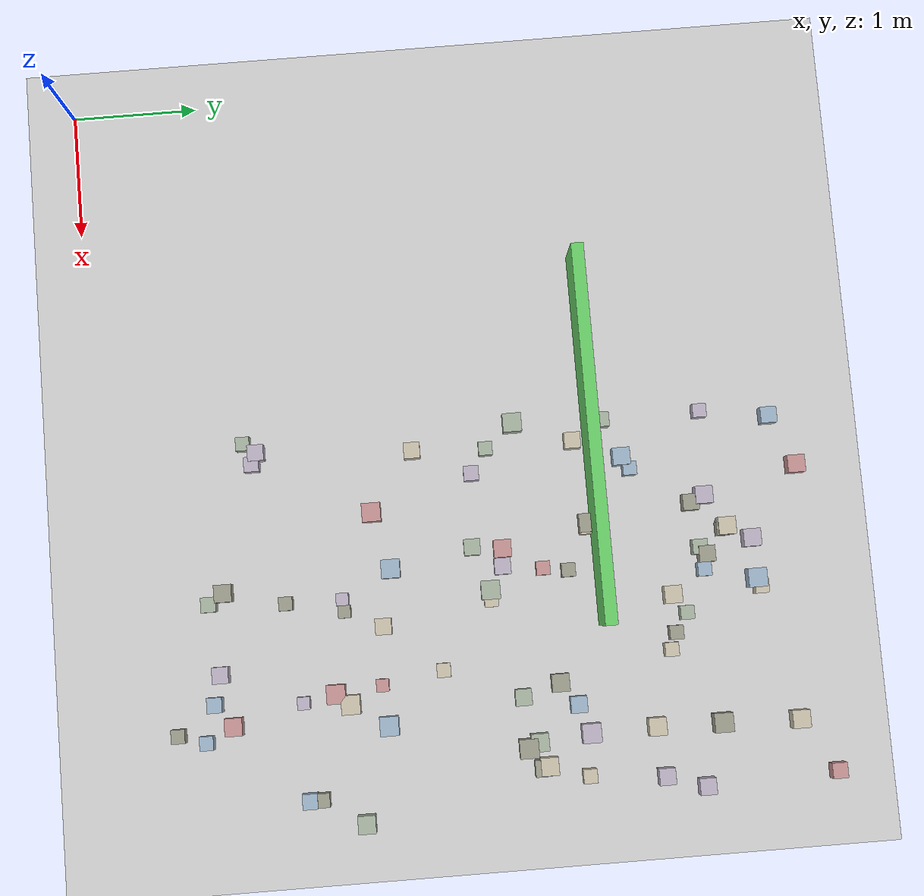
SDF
<sdf version="1.6">
 <world name="small_maze_world">
  <include><uri>model://ground_plane</uri></include>
  <include><uri>model://sun</uri></include>
  <model name="maze_wall_3">
   <static>true</static>
   <pose>3 4 0.25 0 0 0</pose>
   <link name="link">
    <collision name="collision"><geometry><box><size>3 0.1 0.5</size></box></geometry></collision>
    <visual name="visual">
     <geometry><box><size>3 0.1 0.5</size></box></geometry>
     <material><ambient>0.4 0.8 0.4 1</ambient></material>
    </visual>
   </link>
  </model>
  <model name="box_1">
   <static>false</static>
   <pose>3.92 2.33 0.05 0 0 0</pose>
   <link name="link">
    <inertial>
     <mass>0.2</mass>
     <inertia><ixx>0.001</ixx><iyy>0.001</iyy><izz>0.001</izz><ixy>0</ixy><ixz>0</ixz><iyz>0</iyz></inertia>
    </inertial>
    <collision name="collision"><geometry><box><size>0.15 0.15 0.15</size></box></geometry></collision>
    <visual name="visual">
     <geometry><box><size>0.15 0.15 0.15</size></box></geometry>
     <material><ambient>0.6 0.69 0.77 1</ambient><diffuse>0.6 0.69 0.77 1</diffuse></material>
    </visual>
   </link>
  </model>
  <model name="box_8">
   <static>false</static>
   <pose>4.01 0.99 0.05 0 0 0</pose>
   <link name="link">
    <inertial>
     <mass>0.2</mass>
     <inertia><ixx>0.001</ixx><iyy>0.001</iyy><izz>0.001</izz><ixy>0</ixy><ixz>0</ixz><iyz>0</iyz></inertia>
    </inertial>
    <collision name="collision"><geometry><box><size>0.14 0.14 0.14</size></box></geometry></collision>
    <visual name="visual">
     <geometry><box><size>0.14 0.14 0.14</size></box></geometry>
     <material><ambient>0.6 0.6 0.54 1</ambient><diffuse>0.6 0.6 0.54 1</diffuse></material>
    </visual>
   </link>
  </model>
  <model name="box_11">
   <static>false</static>
   <pose>5.56 3.46 0.05 0 0 0</pose>
   <link name="link">
    <inertial>
     <mass>0.2</mass>
     <inertia><ixx>0.001</ixx><iyy>0.001</iyy><izz>0.001</izz><ixy>0</ixy><ixz>0</ixz><iyz>0</iyz></inertia>
    </inertial>
    <collision name="collision"><geometry><box><size>0.14 0.14 0.14</size></box></geometry></collision>
    <visual name="visual">
     <geometry><box><size>0.14 0.14 0.14</size></box></geometry>
     <material><ambient>0.78 0.74 0.66 1</ambient><diffuse>0.78 0.74 0.66 1</diffuse></material>
    </visual>
   </link>
  </model>
  <model name="box_18">
   <static>false</static>
   <pose>3.17 4.24 0.05 0 0 0</pose>
   <link name="link">
    <inertial>
     <mass>0.2</mass>
     <inertia><ixx>0.001</ixx><iyy>0.001</iyy><izz>0.001</izz><ixy>0</ixy><ixz>0</ixz><iyz>0</iyz></inertia>
    </inertial>
    <collision name="collision"><geometry><box><size>0.14 0.14 0.14</size></box></geometry></collision>
    <visual name="visual">
     <geometry><box><size>0.14 0.14 0.14</size></box></geometry>
     <material><ambient>0.6 0.69 0.77 1</ambient><diffuse>0.6 0.69 0.77 1</diffuse></material>
    </visual>
   </link>
  </model>
  <model name="box_21">
   <static>false</static>
   <pose>3.46 2.21 0.05 0 0 0</pose>
   <link name="link">
    <inertial>
     <mass>0.2</mass>
     <inertia><ixx>0.001</ixx><iyy>0.001</iyy><izz>0.001</izz><ixy>0</ixy><ixz>0</ixz><iyz>0</iyz></inertia>
    </inertial>
    <collision name="collision"><geometry><box><size>0.15 0.15 0.15</size></box></geometry></collision>
    <visual name="visual">
     <geometry><box><size>0.15 0.15 0.15</size></box></geometry>
     <material><ambient>0.76 0.56 0.56 1</ambient><diffuse>0.76 0.56 0.56 1</diffuse></material>
    </visual>
   </link>
  </model>
  <model name="box_23">
   <static>false</static>
   <pose>4.73 4.5 0.05 0 0 0</pose>
   <link name="link">
    <inertial>
     <mass>0.2</mass>
     <inertia><ixx>0.001</ixx><iyy>0.001</iyy><izz>0.001</izz><ixy>0</ixy><ixz>0</ixz><iyz>0</iyz></inertia>
    </inertial>
    <collision name="collision"><geometry><box><size>0.11 0.11 0.11</size></box></geometry></collision>
    <visual name="visual">
     <geometry><box><size>0.11 0.11 0.11</size></box></geometry>
     <material><ambient>0.78 0.74 0.66 1</ambient><diffuse>0.78 0.74 0.66 1</diffuse></material>
    </visual>
   </link>
  </model>
  <model name="box_36">
   <static>false</static>
   <pose>3.02 3.16 0.05 0 0 0</pose>
   <link name="link">
    <inertial>
     <mass>0.2</mass>
     <inertia><ixx>0.001</ixx><iyy>0.001</iyy><izz>0.001</izz><ixy>0</ixy><ixz>0</ixz><iyz>0</iyz></inertia>
    </inertial>
    <collision name="collision"><geometry><box><size>0.11 0.11 0.11</size></box></geometry></collision>
    <visual name="visual">
     <geometry><box><size>0.11 0.11 0.11</size></box></geometry>
     <material><ambient>0.64 0.69 0.62 1</ambient><diffuse>0.64 0.69 0.62 1</diffuse></material>
    </visual>
   </link>
  </model>
  <model name="box_38">
   <static>false</static>
   <pose>3.58 4.76 0.05 0 0 0</pose>
   <link name="link">
    <inertial>
     <mass>0.2</mass>
     <inertia><ixx>0.001</ixx><iyy>0.001</iyy><izz>0.001</izz><ixy>0</ixy><ixz>0</ixz><iyz>0</iyz></inertia>
    </inertial>
    <collision name="collision"><geometry><box><size>0.13 0.13 0.13</size></box></geometry></collision>
    <visual name="visual">
     <geometry><box><size>0.13 0.13 0.13</size></box></geometry>
     <material><ambient>0.6 0.6 0.54 1</ambient><diffuse>0.6 0.6 0.54 1</diffuse></material>
    </visual>
   </link>
  </model>
  <model name="box_47">
   <static>false</static>
   <pose>2.85 4.9 0.05 0 0 0</pose>
   <link name="link">
    <inertial>
     <mass>0.2</mass>
     <inertia><ixx>0.001</ixx><iyy>0.001</iyy><izz>0.001</izz><ixy>0</ixy><ixz>0</ixz><iyz>0</iyz></inertia>
    </inertial>
    <collision name="collision"><geometry><box><size>0.11 0.11 0.11</size></box></geometry></collision>
    <visual name="visual">
     <geometry><box><size>0.11 0.11 0.11</size></box></geometry>
     <material><ambient>0.72 0.68 0.75 1</ambient><diffuse>0.72 0.68 0.75 1</diffuse></material>
    </visual>
   </link>
  </model>
  <model name="box_48">
   <static>false</static>
   <pose>2.93 5.45 0.05 0 0 0</pose>
   <link name="link">
    <inertial>
     <mass>0.2</mass>
     <inertia><ixx>0.001</ixx><iyy>0.001</iyy><izz>0.001</izz><ixy>0</ixy><ixz>0</ixz><iyz>0</iyz></inertia>
    </inertial>
    <collision name="collision"><geometry><box><size>0.13 0.13 0.13</size></box></geometry></collision>
    <visual name="visual">
     <geometry><box><size>0.13 0.13 0.13</size></box></geometry>
     <material><ambient>0.6 0.69 0.77 1</ambient><diffuse>0.6 0.69 0.77 1</diffuse></material>
    </visual>
   </link>
  </model>
  <model name="box_59">
   <static>false</static>
   <pose>4.23 3.11 0.05 0 0 0</pose>
   <link name="link">
    <inertial>
     <mass>0.2</mass>
     <inertia><ixx>0.001</ixx><iyy>0.001</iyy><izz>0.001</izz><ixy>0</ixy><ixz>0</ixz><iyz>0</iyz></inertia>
    </inertial>
    <collision name="collision"><geometry><box><size>0.11 0.11 0.11</size></box></geometry></collision>
    <visual name="visual">
     <geometry><box><size>0.11 0.11 0.11</size></box></geometry>
     <material><ambient>0.78 0.74 0.66 1</ambient><diffuse>0.78 0.74 0.66 1</diffuse></material>
    </visual>
   </link>
  </model>
  <model name="box_65">
   <static>false</static>
   <pose>4.87 1.83 0.05 0 0 0</pose>
   <link name="link">
    <inertial>
     <mass>0.2</mass>
     <inertia><ixx>0.001</ixx><iyy>0.001</iyy><izz>0.001</izz><ixy>0</ixy><ixz>0</ixz><iyz>0</iyz></inertia>
    </inertial>
    <collision name="collision"><geometry><box><size>0.15 0.15 0.15</size></box></geometry></collision>
    <visual name="visual">
     <geometry><box><size>0.15 0.15 0.15</size></box></geometry>
     <material><ambient>0.76 0.56 0.56 1</ambient><diffuse>0.76 0.56 0.56 1</diffuse></material>
    </visual>
   </link>
  </model>
  <model name="box_69">
   <static>false</static>
   <pose>5.35 5.46 0.05 0 0 0</pose>
   <link name="link">
    <inertial>
     <mass>0.2</mass>
     <inertia><ixx>0.001</ixx><iyy>0.001</iyy><izz>0.001</izz><ixy>0</ixy><ixz>0</ixz><iyz>0</iyz></inertia>
    </inertial>
    <collision name="collision"><geometry><box><size>0.14 0.14 0.14</size></box></geometry></collision>
    <visual name="visual">
     <geometry><box><size>0.14 0.14 0.14</size></box></geometry>
     <material><ambient>0.78 0.74 0.66 1</ambient><diffuse>0.78 0.74 0.66 1</diffuse></material>
    </visual>
   </link>
  </model>
  <model name="box_73">
   <static>false</static>
   <pose>4.23 1.94 0.05 0 0 0</pose>
   <link name="link">
    <inertial>
     <mass>0.2</mass>
     <inertia><ixx>0.001</ixx><iyy>0.001</iyy><izz>0.001</izz><ixy>0</ixy><ixz>0</ixz><iyz>0</iyz></inertia>
    </inertial>
    <collision name="collision"><geometry><box><size>0.1 0.1 0.1</size></box></geometry></collision>
    <visual name="visual">
     <geometry><box><size>0.1 0.1 0.1</size></box></geometry>
     <material><ambient>0.6 0.6 0.54 1</ambient><diffuse>0.6 0.6 0.54 1</diffuse></material>
    </visual>
   </link>
  </model>
  <model name="box_75">
   <static>false</static>
   <pose>5.1 0.57 0.05 0 0 0</pose>
   <link name="link">
    <inertial>
     <mass>0.2</mass>
     <inertia><ixx>0.001</ixx><iyy>0.001</iyy><izz>0.001</izz><ixy>0</ixy><ixz>0</ixz><iyz>0</iyz></inertia>
    </inertial>
    <collision name="collision"><geometry><box><size>0.11 0.11 0.11</size></box></geometry></collision>
    <visual name="visual">
     <geometry><box><size>0.11 0.11 0.11</size></box></geometry>
     <material><ambient>0.6 0.6 0.54 1</ambient><diffuse>0.6 0.6 0.54 1</diffuse></material>
    </visual>
   </link>
  </model>
  <model name="box_94">
   <static>false</static>
   <pose>4.09 0.87 0.05 0 0 0</pose>
   <link name="link">
    <inertial>
     <mass>0.2</mass>
     <inertia><ixx>0.001</ixx><iyy>0.001</iyy><izz>0.001</izz><ixy>0</ixy><ixz>0</ixz><iyz>0</iyz></inertia>
    </inertial>
    <collision name="collision"><geometry><box><size>0.12 0.12 0.12</size></box></geometry></collision>
    <visual name="visual">
     <geometry><box><size>0.12 0.12 0.12</size></box></geometry>
     <material><ambient>0.64 0.69 0.62 1</ambient><diffuse>0.64 0.69 0.62 1</diffuse></material>
    </visual>
   </link>
  </model>
  <model name="box_113">
   <static>false</static>
   <pose>3.79 5.0 0.05 0 0 0</pose>
   <link name="link">
    <inertial>
     <mass>0.2</mass>
     <inertia><ixx>0.001</ixx><iyy>0.001</iyy><izz>0.001</izz><ixy>0</ixy><ixz>0</ixz><iyz>0</iyz></inertia>
    </inertial>
    <collision name="collision"><geometry><box><size>0.1 0.1 0.1</size></box></geometry></collision>
    <visual name="visual">
     <geometry><box><size>0.1 0.1 0.1</size></box></geometry>
     <material><ambient>0.6 0.69 0.77 1</ambient><diffuse>0.6 0.69 0.77 1</diffuse></material>
    </visual>
   </link>
  </model>
  <model name="box_120">
   <static>false</static>
   <pose>2.99 2.57 0.05 0 0 0</pose>
   <link name="link">
    <inertial>
     <mass>0.2</mass>
     <inertia><ixx>0.001</ixx><iyy>0.001</iyy><izz>0.001</izz><ixy>0</ixy><ixz>0</ixz><iyz>0</iyz></inertia>
    </inertial>
    <collision name="collision"><geometry><box><size>0.13 0.13 0.13</size></box></geometry></collision>
    <visual name="visual">
     <geometry><box><size>0.13 0.13 0.13</size></box></geometry>
     <material><ambient>0.78 0.74 0.66 1</ambient><diffuse>0.78 0.74 0.66 1</diffuse></material>
    </visual>
   </link>
  </model>
  <model name="box_121">
   <static>false</static>
   <pose>5.17 0.79 0.05 0 0 0</pose>
   <link name="link">
    <inertial>
     <mass>0.2</mass>
     <inertia><ixx>0.001</ixx><iyy>0.001</iyy><izz>0.001</izz><ixy>0</ixy><ixz>0</ixz><iyz>0</iyz></inertia>
    </inertial>
    <collision name="collision"><geometry><box><size>0.11 0.11 0.11</size></box></geometry></collision>
    <visual name="visual">
     <geometry><box><size>0.11 0.11 0.11</size></box></geometry>
     <material><ambient>0.6 0.69 0.77 1</ambient><diffuse>0.6 0.69 0.77 1</diffuse></material>
    </visual>
   </link>
  </model>
  <model name="box_122">
   <static>false</static>
   <pose>3.9 5.22 0.05 0 0 0</pose>
   <link name="link">
    <inertial>
     <mass>0.2</mass>
     <inertia><ixx>0.001</ixx><iyy>0.001</iyy><izz>0.001</izz><ixy>0</ixy><ixz>0</ixz><iyz>0</iyz></inertia>
    </inertial>
    <collision name="collision"><geometry><box><size>0.14 0.14 0.14</size></box></geometry></collision>
    <visual name="visual">
     <geometry><box><size>0.14 0.14 0.14</size></box></geometry>
     <material><ambient>0.72 0.68 0.75 1</ambient><diffuse>0.72 0.68 0.75 1</diffuse></material>
    </visual>
   </link>
  </model>
  <model name="box_125">
   <static>false</static>
   <pose>2.83 1.22 0.05 0 0 0</pose>
   <link name="link">
    <inertial>
     <mass>0.2</mass>
     <inertia><ixx>0.001</ixx><iyy>0.001</iyy><izz>0.001</izz><ixy>0</ixy><ixz>0</ixz><iyz>0</iyz></inertia>
    </inertial>
    <collision name="collision"><geometry><box><size>0.11 0.11 0.11</size></box></geometry></collision>
    <visual name="visual">
     <geometry><box><size>0.11 0.11 0.11</size></box></geometry>
     <material><ambient>0.64 0.69 0.62 1</ambient><diffuse>0.64 0.69 0.62 1</diffuse></material>
    </visual>
   </link>
  </model>
  <model name="box_134">
   <static>false</static>
   <pose>4.37 2.24 0.05 0 0 0</pose>
   <link name="link">
    <inertial>
     <mass>0.2</mass>
     <inertia><ixx>0.001</ixx><iyy>0.001</iyy><izz>0.001</izz><ixy>0</ixy><ixz>0</ixz><iyz>0</iyz></inertia>
    </inertial>
    <collision name="collision"><geometry><box><size>0.13 0.13 0.13</size></box></geometry></collision>
    <visual name="visual">
     <geometry><box><size>0.13 0.13 0.13</size></box></geometry>
     <material><ambient>0.78 0.74 0.66 1</ambient><diffuse>0.78 0.74 0.66 1</diffuse></material>
    </visual>
   </link>
  </model>
  <model name="box_148">
   <static>false</static>
   <pose>4.45 4.65 0.05 0 0 0</pose>
   <link name="link">
    <inertial>
     <mass>0.2</mass>
     <inertia><ixx>0.001</ixx><iyy>0.001</iyy><izz>0.001</izz><ixy>0</ixy><ixz>0</ixz><iyz>0</iyz></inertia>
    </inertial>
    <collision name="collision"><geometry><box><size>0.11 0.11 0.11</size></box></geometry></collision>
    <visual name="visual">
     <geometry><box><size>0.11 0.11 0.11</size></box></geometry>
     <material><ambient>0.64 0.69 0.62 1</ambient><diffuse>0.64 0.69 0.62 1</diffuse></material>
    </visual>
   </link>
  </model>
  <model name="box_153">
   <static>false</static>
   <pose>3.68 3.93 0.05 0 0 0</pose>
   <link name="link">
    <inertial>
     <mass>0.2</mass>
     <inertia><ixx>0.001</ixx><iyy>0.001</iyy><izz>0.001</izz><ixy>0</ixy><ixz>0</ixz><iyz>0</iyz></inertia>
    </inertial>
    <collision name="collision"><geometry><box><size>0.15 0.15 0.15</size></box></geometry></collision>
    <visual name="visual">
     <geometry><box><size>0.15 0.15 0.15</size></box></geometry>
     <material><ambient>0.6 0.6 0.54 1</ambient><diffuse>0.6 0.6 0.54 1</diffuse></material>
    </visual>
   </link>
  </model>
  <model name="box_156">
   <static>false</static>
   <pose>4.6 4.55 0.05 0 0 0</pose>
   <link name="link">
    <inertial>
     <mass>0.2</mass>
     <inertia><ixx>0.001</ixx><iyy>0.001</iyy><izz>0.001</izz><ixy>0</ixy><ixz>0</ixz><iyz>0</iyz></inertia>
    </inertial>
    <collision name="collision"><geometry><box><size>0.11 0.11 0.11</size></box></geometry></collision>
    <visual name="visual">
     <geometry><box><size>0.11 0.11 0.11</size></box></geometry>
     <material><ambient>0.6 0.6 0.54 1</ambient><diffuse>0.6 0.6 0.54 1</diffuse></material>
    </visual>
   </link>
  </model>
  <model name="box_158">
   <static>false</static>
   <pose>4.01 3.54 0.05 0 0 0</pose>
   <link name="link">
    <inertial>
     <mass>0.2</mass>
     <inertia><ixx>0.001</ixx><iyy>0.001</iyy><izz>0.001</izz><ixy>0</ixy><ixz>0</ixz><iyz>0</iyz></inertia>
    </inertial>
    <collision name="collision"><geometry><box><size>0.11 0.11 0.11</size></box></geometry></collision>
    <visual name="visual">
     <geometry><box><size>0.11 0.11 0.11</size></box></geometry>
     <material><ambient>0.76 0.56 0.56 1</ambient><diffuse>0.76 0.56 0.56 1</diffuse></material>
    </visual>
   </link>
  </model>
  <model name="box_160">
   <static>false</static>
   <pose>5.68 1.67 0.05 0 0 0</pose>
   <link name="link">
    <inertial>
     <mass>0.2</mass>
     <inertia><ixx>0.001</ixx><iyy>0.001</iyy><izz>0.001</izz><ixy>0</ixy><ixz>0</ixz><iyz>0</iyz></inertia>
    </inertial>
    <collision name="collision"><geometry><box><size>0.11 0.11 0.11</size></box></geometry></collision>
    <visual name="visual">
     <geometry><box><size>0.11 0.11 0.11</size></box></geometry>
     <material><ambient>0.6 0.6 0.54 1</ambient><diffuse>0.6 0.6 0.54 1</diffuse></material>
    </visual>
   </link>
  </model>
  <model name="box_163">
   <static>false</static>
   <pose>2.83 3.39 0.05 0 0 0</pose>
   <link name="link">
    <inertial>
     <mass>0.2</mass>
     <inertia><ixx>0.001</ixx><iyy>0.001</iyy><izz>0.001</izz><ixy>0</ixy><ixz>0</ixz><iyz>0</iyz></inertia>
    </inertial>
    <collision name="collision"><geometry><box><size>0.15 0.15 0.15</size></box></geometry></collision>
    <visual name="visual">
     <geometry><box><size>0.15 0.15 0.15</size></box></geometry>
     <material><ambient>0.64 0.69 0.62 1</ambient><diffuse>0.64 0.69 0.62 1</diffuse></material>
    </visual>
   </link>
  </model>
  <model name="box_165">
   <static>false</static>
   <pose>5.33 3.81 0.05 0 0 0</pose>
   <link name="link">
    <inertial>
     <mass>0.2</mass>
     <inertia><ixx>0.001</ixx><iyy>0.001</iyy><izz>0.001</izz><ixy>0</ixy><ixz>0</ixz><iyz>0</iyz></inertia>
    </inertial>
    <collision name="collision"><geometry><box><size>0.15 0.15 0.15</size></box></geometry></collision>
    <visual name="visual">
     <geometry><box><size>0.15 0.15 0.15</size></box></geometry>
     <material><ambient>0.72 0.68 0.75 1</ambient><diffuse>0.72 0.68 0.75 1</diffuse></material>
    </visual>
   </link>
  </model>
  <model name="box_166">
   <static>false</static>
   <pose>4.29 5.26 0.05 0 0 0</pose>
   <link name="link">
    <inertial>
     <mass>0.2</mass>
     <inertia><ixx>0.001</ixx><iyy>0.001</iyy><izz>0.001</izz><ixy>0</ixy><ixz>0</ixz><iyz>0</iyz></inertia>
    </inertial>
    <collision name="collision"><geometry><box><size>0.11 0.11 0.11</size></box></geometry></collision>
    <visual name="visual">
     <geometry><box><size>0.11 0.11 0.11</size></box></geometry>
     <material><ambient>0.78 0.74 0.66 1</ambient><diffuse>0.78 0.74 0.66 1</diffuse></material>
    </visual>
   </link>
  </model>
  <model name="box_173">
   <static>false</static>
   <pose>4.0 4.85 0.05 0 0 0</pose>
   <link name="link">
    <inertial>
     <mass>0.2</mass>
     <inertia><ixx>0.001</ixx><iyy>0.001</iyy><izz>0.001</izz><ixy>0</ixy><ixz>0</ixz><iyz>0</iyz></inertia>
    </inertial>
    <collision name="collision"><geometry><box><size>0.13 0.13 0.13</size></box></geometry></collision>
    <visual name="visual">
     <geometry><box><size>0.13 0.13 0.13</size></box></geometry>
     <material><ambient>0.6 0.6 0.54 1</ambient><diffuse>0.6 0.6 0.54 1</diffuse></material>
    </visual>
   </link>
  </model>
  <model name="box_181">
   <static>false</static>
   <pose>3.83 3.23 0.05 0 0 0</pose>
   <link name="link">
    <inertial>
     <mass>0.2</mass>
     <inertia><ixx>0.001</ixx><iyy>0.001</iyy><izz>0.001</izz><ixy>0</ixy><ixz>0</ixz><iyz>0</iyz></inertia>
    </inertial>
    <collision name="collision"><geometry><box><size>0.14 0.14 0.14</size></box></geometry></collision>
    <visual name="visual">
     <geometry><box><size>0.14 0.14 0.14</size></box></geometry>
     <material><ambient>0.76 0.56 0.56 1</ambient><diffuse>0.76 0.56 0.56 1</diffuse></material>
    </visual>
   </link>
  </model>
  <model name="box_196">
   <static>false</static>
   <pose>3.53 4.87 0.05 0 0 0</pose>
   <link name="link">
    <inertial>
     <mass>0.2</mass>
     <inertia><ixx>0.001</ixx><iyy>0.001</iyy><izz>0.001</izz><ixy>0</ixy><ixz>0</ixz><iyz>0</iyz></inertia>
    </inertial>
    <collision name="collision"><geometry><box><size>0.14 0.14 0.14</size></box></geometry></collision>
    <visual name="visual">
     <geometry><box><size>0.14 0.14 0.14</size></box></geometry>
     <material><ambient>0.72 0.68 0.75 1</ambient><diffuse>0.72 0.68 0.75 1</diffuse></material>
    </visual>
   </link>
  </model>
  <model name="box_205">
   <static>false</static>
   <pose>5.37 3.4 0.05 0 0 0</pose>
   <link name="link">
    <inertial>
     <mass>0.2</mass>
     <inertia><ixx>0.001</ixx><iyy>0.001</iyy><izz>0.001</izz><ixy>0</ixy><ixz>0</ixz><iyz>0</iyz></inertia>
    </inertial>
    <collision name="collision"><geometry><box><size>0.14 0.14 0.14</size></box></geometry></collision>
    <visual name="visual">
     <geometry><box><size>0.14 0.14 0.14</size></box></geometry>
     <material><ambient>0.64 0.69 0.62 1</ambient><diffuse>0.64 0.69 0.62 1</diffuse></material>
    </visual>
   </link>
  </model>
  <model name="box_210">
   <static>false</static>
   <pose>5.57 3.41 0.05 0 0 0</pose>
   <link name="link">
    <inertial>
     <mass>0.2</mass>
     <inertia><ixx>0.001</ixx><iyy>0.001</iyy><izz>0.001</izz><ixy>0</ixy><ixz>0</ixz><iyz>0</iyz></inertia>
    </inertial>
    <collision name="collision"><geometry><box><size>0.13 0.13 0.13</size></box></geometry></collision>
    <visual name="visual">
     <geometry><box><size>0.13 0.13 0.13</size></box></geometry>
     <material><ambient>0.6 0.6 0.54 1</ambient><diffuse>0.6 0.6 0.54 1</diffuse></material>
    </visual>
   </link>
  </model>
  <model name="box_216">
   <static>false</static>
   <pose>3.34 5.63 0.05 0 0 0</pose>
   <link name="link">
    <inertial>
     <mass>0.2</mass>
     <inertia><ixx>0.001</ixx><iyy>0.001</iyy><izz>0.001</izz><ixy>0</ixy><ixz>0</ixz><iyz>0</iyz></inertia>
    </inertial>
    <collision name="collision"><geometry><box><size>0.14 0.14 0.14</size></box></geometry></collision>
    <visual name="visual">
     <geometry><box><size>0.14 0.14 0.14</size></box></geometry>
     <material><ambient>0.76 0.56 0.56 1</ambient><diffuse>0.76 0.56 0.56 1</diffuse></material>
    </visual>
   </link>
  </model>
  <model name="box_218">
   <static>false</static>
   <pose>3.81 5.0 0.05 0 0 0</pose>
   <link name="link">
    <inertial>
     <mass>0.2</mass>
     <inertia><ixx>0.001</ixx><iyy>0.001</iyy><izz>0.001</izz><ixy>0</ixy><ixz>0</ixz><iyz>0</iyz></inertia>
    </inertial>
    <collision name="collision"><geometry><box><size>0.11 0.11 0.11</size></box></geometry></collision>
    <visual name="visual">
     <geometry><box><size>0.11 0.11 0.11</size></box></geometry>
     <material><ambient>0.6 0.6 0.54 1</ambient><diffuse>0.6 0.6 0.54 1</diffuse></material>
    </visual>
   </link>
  </model>
  <model name="box_220">
   <static>false</static>
   <pose>4.65 0.93 0.05 0 0 0</pose>
   <link name="link">
    <inertial>
     <mass>0.2</mass>
     <inertia><ixx>0.001</ixx><iyy>0.001</iyy><izz>0.001</izz><ixy>0</ixy><ixz>0</ixz><iyz>0</iyz></inertia>
    </inertial>
    <collision name="collision"><geometry><box><size>0.13 0.13 0.13</size></box></geometry></collision>
    <visual name="visual">
     <geometry><box><size>0.13 0.13 0.13</size></box></geometry>
     <material><ambient>0.72 0.68 0.75 1</ambient><diffuse>0.72 0.68 0.75 1</diffuse></material>
    </visual>
   </link>
  </model>
  <model name="box_221">
   <static>false</static>
   <pose>3.21 3.03 0.05 0 0 0</pose>
   <link name="link">
    <inertial>
     <mass>0.2</mass>
     <inertia><ixx>0.001</ixx><iyy>0.001</iyy><izz>0.001</izz><ixy>0</ixy><ixz>0</ixz><iyz>0</iyz></inertia>
    </inertial>
    <collision name="collision"><geometry><box><size>0.12 0.12 0.12</size></box></geometry></collision>
    <visual name="visual">
     <geometry><box><size>0.12 0.12 0.12</size></box></geometry>
     <material><ambient>0.72 0.68 0.75 1</ambient><diffuse>0.72 0.68 0.75 1</diffuse></material>
    </visual>
   </link>
  </model>
  <model name="box_229">
   <static>false</static>
   <pose>4.92 3.6 0.05 0 0 0</pose>
   <link name="link">
    <inertial>
     <mass>0.2</mass>
     <inertia><ixx>0.001</ixx><iyy>0.001</iyy><izz>0.001</izz><ixy>0</ixy><ixz>0</ixz><iyz>0</iyz></inertia>
    </inertial>
    <collision name="collision"><geometry><box><size>0.14 0.14 0.14</size></box></geometry></collision>
    <visual name="visual">
     <geometry><box><size>0.14 0.14 0.14</size></box></geometry>
     <material><ambient>0.6 0.6 0.54 1</ambient><diffuse>0.6 0.6 0.54 1</diffuse></material>
    </visual>
   </link>
  </model>
  <model name="box_230">
   <static>false</static>
   <pose>3.97 3.22 0.05 0 0 0</pose>
   <link name="link">
    <inertial>
     <mass>0.2</mass>
     <inertia><ixx>0.001</ixx><iyy>0.001</iyy><izz>0.001</izz><ixy>0</ixy><ixz>0</ixz><iyz>0</iyz></inertia>
    </inertial>
    <collision name="collision"><geometry><box><size>0.13 0.13 0.13</size></box></geometry></collision>
    <visual name="visual">
     <geometry><box><size>0.13 0.13 0.13</size></box></geometry>
     <material><ambient>0.72 0.68 0.75 1</ambient><diffuse>0.72 0.68 0.75 1</diffuse></material>
    </visual>
   </link>
  </model>
  <model name="box_235">
   <static>false</static>
   <pose>3.71 3.92 0.05 0 0 0</pose>
   <link name="link">
    <inertial>
     <mass>0.2</mass>
     <inertia><ixx>0.001</ixx><iyy>0.001</iyy><izz>0.001</izz><ixy>0</ixy><ixz>0</ixz><iyz>0</iyz></inertia>
    </inertial>
    <collision name="collision"><geometry><box><size>0.12 0.12 0.12</size></box></geometry></collision>
    <visual name="visual">
     <geometry><box><size>0.12 0.12 0.12</size></box></geometry>
     <material><ambient>0.78 0.74 0.66 1</ambient><diffuse>0.78 0.74 0.66 1</diffuse></material>
    </visual>
   </link>
  </model>
  <model name="box_243">
   <static>false</static>
   <pose>2.86 4.11 0.05 0 0 0</pose>
   <link name="link">
    <inertial>
     <mass>0.2</mass>
     <inertia><ixx>0.001</ixx><iyy>0.001</iyy><izz>0.001</izz><ixy>0</ixy><ixz>0</ixz><iyz>0</iyz></inertia>
    </inertial>
    <collision name="collision"><geometry><box><size>0.12 0.12 0.12</size></box></geometry></collision>
    <visual name="visual">
     <geometry><box><size>0.12 0.12 0.12</size></box></geometry>
     <material><ambient>0.64 0.69 0.62 1</ambient><diffuse>0.64 0.69 0.62 1</diffuse></material>
    </visual>
   </link>
  </model>
  <model name="box_245">
   <static>false</static>
   <pose>5.06 1.01 0.05 0 0 0</pose>
   <link name="link">
    <inertial>
     <mass>0.2</mass>
     <inertia><ixx>0.001</ixx><iyy>0.001</iyy><izz>0.001</izz><ixy>0</ixy><ixz>0</ixz><iyz>0</iyz></inertia>
    </inertial>
    <collision name="collision"><geometry><box><size>0.14 0.14 0.14</size></box></geometry></collision>
    <visual name="visual">
     <geometry><box><size>0.14 0.14 0.14</size></box></geometry>
     <material><ambient>0.76 0.56 0.56 1</ambient><diffuse>0.76 0.56 0.56 1</diffuse></material>
    </visual>
   </link>
  </model>
  <model name="box_250">
   <static>false</static>
   <pose>3.27 4.3 0.05 0 0 0</pose>
   <link name="link">
    <inertial>
     <mass>0.2</mass>
     <inertia><ixx>0.001</ixx><iyy>0.001</iyy><izz>0.001</izz><ixy>0</ixy><ixz>0</ixz><iyz>0</iyz></inertia>
    </inertial>
    <collision name="collision"><geometry><box><size>0.11 0.11 0.11</size></box></geometry></collision>
    <visual name="visual">
     <geometry><box><size>0.11 0.11 0.11</size></box></geometry>
     <material><ambient>0.6 0.69 0.77 1</ambient><diffuse>0.6 0.69 0.77 1</diffuse></material>
    </visual>
   </link>
  </model>
  <model name="box_253">
   <static>false</static>
   <pose>5.66 3.77 0.05 0 0 0</pose>
   <link name="link">
    <inertial>
     <mass>0.2</mass>
     <inertia><ixx>0.001</ixx><iyy>0.001</iyy><izz>0.001</izz><ixy>0</ixy><ixz>0</ixz><iyz>0</iyz></inertia>
    </inertial>
    <collision name="collision"><geometry><box><size>0.11 0.11 0.11</size></box></geometry></collision>
    <visual name="visual">
     <geometry><box><size>0.11 0.11 0.11</size></box></geometry>
     <material><ambient>0.78 0.74 0.66 1</ambient><diffuse>0.78 0.74 0.66 1</diffuse></material>
    </visual>
   </link>
  </model>
  <model name="box_266">
   <static>false</static>
   <pose>5.68 1.57 0.05 0 0 0</pose>
   <link name="link">
    <inertial>
     <mass>0.2</mass>
     <inertia><ixx>0.001</ixx><iyy>0.001</iyy><izz>0.001</izz><ixy>0</ixy><ixz>0</ixz><iyz>0</iyz></inertia>
    </inertial>
    <collision name="collision"><geometry><box><size>0.12 0.12 0.12</size></box></geometry></collision>
    <visual name="visual">
     <geometry><box><size>0.12 0.12 0.12</size></box></geometry>
     <material><ambient>0.6 0.69 0.77 1</ambient><diffuse>0.6 0.69 0.77 1</diffuse></material>
    </visual>
   </link>
  </model>
  <model name="box_268">
   <static>false</static>
   <pose>4.3 4.55 0.05 0 0 0</pose>
   <link name="link">
    <inertial>
     <mass>0.2</mass>
     <inertia><ixx>0.001</ixx><iyy>0.001</iyy><izz>0.001</izz><ixy>0</ixy><ixz>0</ixz><iyz>0</iyz></inertia>
    </inertial>
    <collision name="collision"><geometry><box><size>0.14 0.14 0.14</size></box></geometry></collision>
    <visual name="visual">
     <geometry><box><size>0.14 0.14 0.14</size></box></geometry>
     <material><ambient>0.78 0.74 0.66 1</ambient><diffuse>0.78 0.74 0.66 1</diffuse></material>
    </visual>
   </link>
  </model>
  <model name="box_273">
   <static>false</static>
   <pose>5.32 4.33 0.05 0 0 0</pose>
   <link name="link">
    <inertial>
     <mass>0.2</mass>
     <inertia><ixx>0.001</ixx><iyy>0.001</iyy><izz>0.001</izz><ixy>0</ixy><ixz>0</ixz><iyz>0</iyz></inertia>
    </inertial>
    <collision name="collision"><geometry><box><size>0.14 0.14 0.14</size></box></geometry></collision>
    <visual name="visual">
     <geometry><box><size>0.14 0.14 0.14</size></box></geometry>
     <material><ambient>0.78 0.74 0.66 1</ambient><diffuse>0.78 0.74 0.66 1</diffuse></material>
    </visual>
   </link>
  </model>
  <model name="box_288">
   <static>false</static>
   <pose>5.89 2.0 0.05 0 0 0</pose>
   <link name="link">
    <inertial>
     <mass>0.2</mass>
     <inertia><ixx>0.001</ixx><iyy>0.001</iyy><izz>0.001</izz><ixy>0</ixy><ixz>0</ixz><iyz>0</iyz></inertia>
    </inertial>
    <collision name="collision"><geometry><box><size>0.14 0.14 0.14</size></box></geometry></collision>
    <visual name="visual">
     <geometry><box><size>0.14 0.14 0.14</size></box></geometry>
     <material><ambient>0.64 0.69 0.62 1</ambient><diffuse>0.64 0.69 0.62 1</diffuse></material>
    </visual>
   </link>
  </model>
  <model name="box_289">
   <static>false</static>
   <pose>5.77 5.72 0.05 0 0 0</pose>
   <link name="link">
    <inertial>
     <mass>0.2</mass>
     <inertia><ixx>0.001</ixx><iyy>0.001</iyy><izz>0.001</izz><ixy>0</ixy><ixz>0</ixz><iyz>0</iyz></inertia>
    </inertial>
    <collision name="collision"><geometry><box><size>0.12 0.12 0.12</size></box></geometry></collision>
    <visual name="visual">
     <geometry><box><size>0.12 0.12 0.12</size></box></geometry>
     <material><ambient>0.76 0.56 0.56 1</ambient><diffuse>0.76 0.56 0.56 1</diffuse></material>
    </visual>
   </link>
  </model>
  <model name="box_293">
   <static>false</static>
   <pose>5.33 4.85 0.05 0 0 0</pose>
   <link name="link">
    <inertial>
     <mass>0.2</mass>
     <inertia><ixx>0.001</ixx><iyy>0.001</iyy><izz>0.001</izz><ixy>0</ixy><ixz>0</ixz><iyz>0</iyz></inertia>
    </inertial>
    <collision name="collision"><geometry><box><size>0.15 0.15 0.15</size></box></geometry></collision>
    <visual name="visual">
     <geometry><box><size>0.15 0.15 0.15</size></box></geometry>
     <material><ambient>0.6 0.6 0.54 1</ambient><diffuse>0.6 0.6 0.54 1</diffuse></material>
    </visual>
   </link>
  </model>
  <model name="box_301">
   <static>false</static>
   <pose>4.88 0.87 0.05 0 0 0</pose>
   <link name="link">
    <inertial>
     <mass>0.2</mass>
     <inertia><ixx>0.001</ixx><iyy>0.001</iyy><izz>0.001</izz><ixy>0</ixy><ixz>0</ixz><iyz>0</iyz></inertia>
    </inertial>
    <collision name="collision"><geometry><box><size>0.12 0.12 0.12</size></box></geometry></collision>
    <visual name="visual">
     <geometry><box><size>0.12 0.12 0.12</size></box></geometry>
     <material><ambient>0.6 0.69 0.77 1</ambient><diffuse>0.6 0.69 0.77 1</diffuse></material>
    </visual>
   </link>
  </model>
  <model name="box_308">
   <static>false</static>
   <pose>3.94 4.8 0.05 0 0 0</pose>
   <link name="link">
    <inertial>
     <mass>0.2</mass>
     <inertia><ixx>0.001</ixx><iyy>0.001</iyy><izz>0.001</izz><ixy>0</ixy><ixz>0</ixz><iyz>0</iyz></inertia>
    </inertial>
    <collision name="collision"><geometry><box><size>0.12 0.12 0.12</size></box></geometry></collision>
    <visual name="visual">
     <geometry><box><size>0.12 0.12 0.12</size></box></geometry>
     <material><ambient>0.64 0.69 0.62 1</ambient><diffuse>0.64 0.69 0.62 1</diffuse></material>
    </visual>
   </link>
  </model>
  <model name="box_310">
   <static>false</static>
   <pose>5.1 3.73 0.05 0 0 0</pose>
   <link name="link">
    <inertial>
     <mass>0.2</mass>
     <inertia><ixx>0.001</ixx><iyy>0.001</iyy><izz>0.001</izz><ixy>0</ixy><ixz>0</ixz><iyz>0</iyz></inertia>
    </inertial>
    <collision name="collision"><geometry><box><size>0.13 0.13 0.13</size></box></geometry></collision>
    <visual name="visual">
     <geometry><box><size>0.13 0.13 0.13</size></box></geometry>
     <material><ambient>0.6 0.69 0.77 1</ambient><diffuse>0.6 0.69 0.77 1</diffuse></material>
    </visual>
   </link>
  </model>
  <model name="box_319">
   <static>false</static>
   <pose>4.96 1.94 0.05 0 0 0</pose>
   <link name="link">
    <inertial>
     <mass>0.2</mass>
     <inertia><ixx>0.001</ixx><iyy>0.001</iyy><izz>0.001</izz><ixy>0</ixy><ixz>0</ixz><iyz>0</iyz></inertia>
    </inertial>
    <collision name="collision"><geometry><box><size>0.15 0.15 0.15</size></box></geometry></collision>
    <visual name="visual">
     <geometry><box><size>0.15 0.15 0.15</size></box></geometry>
     <material><ambient>0.78 0.74 0.66 1</ambient><diffuse>0.78 0.74 0.66 1</diffuse></material>
    </visual>
   </link>
  </model>
  <model name="box_335">
   <static>false</static>
   <pose>5.01 3.3 0.05 0 0 0</pose>
   <link name="link">
    <inertial>
     <mass>0.2</mass>
     <inertia><ixx>0.001</ixx><iyy>0.001</iyy><izz>0.001</izz><ixy>0</ixy><ixz>0</ixz><iyz>0</iyz></inertia>
    </inertial>
    <collision name="collision"><geometry><box><size>0.13 0.13 0.13</size></box></geometry></collision>
    <visual name="visual">
     <geometry><box><size>0.13 0.13 0.13</size></box></geometry>
     <material><ambient>0.64 0.69 0.62 1</ambient><diffuse>0.64 0.69 0.62 1</diffuse></material>
    </visual>
   </link>
  </model>
  <model name="box_337">
   <static>false</static>
   <pose>5.81 4.68 0.05 0 0 0</pose>
   <link name="link">
    <inertial>
     <mass>0.2</mass>
     <inertia><ixx>0.001</ixx><iyy>0.001</iyy><izz>0.001</izz><ixy>0</ixy><ixz>0</ixz><iyz>0</iyz></inertia>
    </inertial>
    <collision name="collision"><geometry><box><size>0.13 0.13 0.13</size></box></geometry></collision>
    <visual name="visual">
     <geometry><box><size>0.13 0.13 0.13</size></box></geometry>
     <material><ambient>0.72 0.68 0.75 1</ambient><diffuse>0.72 0.68 0.75 1</diffuse></material>
    </visual>
   </link>
  </model>
  <model name="box_338">
   <static>false</static>
   <pose>4.15 3.11 0.05 0 0 0</pose>
   <link name="link">
    <inertial>
     <mass>0.2</mass>
     <inertia><ixx>0.001</ixx><iyy>0.001</iyy><izz>0.001</izz><ixy>0</ixy><ixz>0</ixz><iyz>0</iyz></inertia>
    </inertial>
    <collision name="collision"><geometry><box><size>0.15 0.15 0.15</size></box></geometry></collision>
    <visual name="visual">
     <geometry><box><size>0.15 0.15 0.15</size></box></geometry>
     <material><ambient>0.64 0.69 0.62 1</ambient><diffuse>0.64 0.69 0.62 1</diffuse></material>
    </visual>
   </link>
  </model>
  <model name="box_352">
   <static>false</static>
   <pose>3.0 1.28 0.05 0 0 0</pose>
   <link name="link">
    <inertial>
     <mass>0.2</mass>
     <inertia><ixx>0.001</ixx><iyy>0.001</iyy><izz>0.001</izz><ixy>0</ixy><ixz>0</ixz><iyz>0</iyz></inertia>
    </inertial>
    <collision name="collision"><geometry><box><size>0.12 0.12 0.12</size></box></geometry></collision>
    <visual name="visual">
     <geometry><box><size>0.12 0.12 0.12</size></box></geometry>
     <material><ambient>0.72 0.68 0.75 1</ambient><diffuse>0.72 0.68 0.75 1</diffuse></material>
    </visual>
   </link>
  </model>
  <model name="box_362">
   <static>false</static>
   <pose>4.92 1.57 0.05 0 0 0</pose>
   <link name="link">
    <inertial>
     <mass>0.2</mass>
     <inertia><ixx>0.001</ixx><iyy>0.001</iyy><izz>0.001</izz><ixy>0</ixy><ixz>0</ixz><iyz>0</iyz></inertia>
    </inertial>
    <collision name="collision"><geometry><box><size>0.1 0.1 0.1</size></box></geometry></collision>
    <visual name="visual">
     <geometry><box><size>0.1 0.1 0.1</size></box></geometry>
     <material><ambient>0.72 0.68 0.75 1</ambient><diffuse>0.72 0.68 0.75 1</diffuse></material>
    </visual>
   </link>
  </model>
  <model name="box_368">
   <static>false</static>
   <pose>3.01 3.86 0.05 0 0 0</pose>
   <link name="link">
    <inertial>
     <mass>0.2</mass>
     <inertia><ixx>0.001</ixx><iyy>0.001</iyy><izz>0.001</izz><ixy>0</ixy><ixz>0</ixz><iyz>0</iyz></inertia>
    </inertial>
    <collision name="collision"><geometry><box><size>0.13 0.13 0.13</size></box></geometry></collision>
    <visual name="visual">
     <geometry><box><size>0.13 0.13 0.13</size></box></geometry>
     <material><ambient>0.78 0.74 0.66 1</ambient><diffuse>0.78 0.74 0.66 1</diffuse></material>
    </visual>
   </link>
  </model>
  <model name="box_380">
   <static>false</static>
   <pose>4.12 4.82 0.05 0 0 0</pose>
   <link name="link">
    <inertial>
     <mass>0.2</mass>
     <inertia><ixx>0.001</ixx><iyy>0.001</iyy><izz>0.001</izz><ixy>0</ixy><ixz>0</ixz><iyz>0</iyz></inertia>
    </inertial>
    <collision name="collision"><geometry><box><size>0.11 0.11 0.11</size></box></geometry></collision>
    <visual name="visual">
     <geometry><box><size>0.11 0.11 0.11</size></box></geometry>
     <material><ambient>0.6 0.69 0.77 1</ambient><diffuse>0.6 0.69 0.77 1</diffuse></material>
    </visual>
   </link>
  </model>
  <model name="box_385">
   <static>false</static>
   <pose>3.8 2.99 0.05 0 0 0</pose>
   <link name="link">
    <inertial>
     <mass>0.2</mass>
     <inertia><ixx>0.001</ixx><iyy>0.001</iyy><izz>0.001</izz><ixy>0</ixy><ixz>0</ixz><iyz>0</iyz></inertia>
    </inertial>
    <collision name="collision"><geometry><box><size>0.13 0.13 0.13</size></box></geometry></collision>
    <visual name="visual">
     <geometry><box><size>0.13 0.13 0.13</size></box></geometry>
     <material><ambient>0.64 0.69 0.62 1</ambient><diffuse>0.64 0.69 0.62 1</diffuse></material>
    </visual>
   </link>
  </model>
  <model name="box_387">
   <static>false</static>
   <pose>4.13 1.93 0.05 0 0 0</pose>
   <link name="link">
    <inertial>
     <mass>0.2</mass>
     <inertia><ixx>0.001</ixx><iyy>0.001</iyy><izz>0.001</izz><ixy>0</ixy><ixz>0</ixz><iyz>0</iyz></inertia>
    </inertial>
    <collision name="collision"><geometry><box><size>0.1 0.1 0.1</size></box></geometry></collision>
    <visual name="visual">
     <geometry><box><size>0.1 0.1 0.1</size></box></geometry>
     <material><ambient>0.72 0.68 0.75 1</ambient><diffuse>0.72 0.68 0.75 1</diffuse></material>
    </visual>
   </link>
  </model>
  <model name="box_389">
   <static>false</static>
   <pose>4.83 2.2 0.05 0 0 0</pose>
   <link name="link">
    <inertial>
     <mass>0.2</mass>
     <inertia><ixx>0.001</ixx><iyy>0.001</iyy><izz>0.001</izz><ixy>0</ixy><ixz>0</ixz><iyz>0</iyz></inertia>
    </inertial>
    <collision name="collision"><geometry><box><size>0.1 0.1 0.1</size></box></geometry></collision>
    <visual name="visual">
     <geometry><box><size>0.1 0.1 0.1</size></box></geometry>
     <material><ambient>0.76 0.56 0.56 1</ambient><diffuse>0.76 0.56 0.56 1</diffuse></material>
    </visual>
   </link>
  </model>
  <model name="box_391">
   <static>false</static>
   <pose>4.22 5.23 0.05 0 0 0</pose>
   <link name="link">
    <inertial>
     <mass>0.2</mass>
     <inertia><ixx>0.001</ixx><iyy>0.001</iyy><izz>0.001</izz><ixy>0</ixy><ixz>0</ixz><iyz>0</iyz></inertia>
    </inertial>
    <collision name="collision"><geometry><box><size>0.15 0.15 0.15</size></box></geometry></collision>
    <visual name="visual">
     <geometry><box><size>0.15 0.15 0.15</size></box></geometry>
     <material><ambient>0.6 0.69 0.77 1</ambient><diffuse>0.6 0.69 0.77 1</diffuse></material>
    </visual>
   </link>
  </model>
  <model name="box_395">
   <static>false</static>
   <pose>4.75 2.69 0.05 0 0 0</pose>
   <link name="link">
    <inertial>
     <mass>0.2</mass>
     <inertia><ixx>0.001</ixx><iyy>0.001</iyy><izz>0.001</izz><ixy>0</ixy><ixz>0</ixz><iyz>0</iyz></inertia>
    </inertial>
    <collision name="collision"><geometry><box><size>0.11 0.11 0.11</size></box></geometry></collision>
    <visual name="visual">
     <geometry><box><size>0.11 0.11 0.11</size></box></geometry>
     <material><ambient>0.78 0.74 0.66 1</ambient><diffuse>0.78 0.74 0.66 1</diffuse></material>
    </visual>
   </link>
  </model>
  <model name="box_400">
   <static>false</static>
   <pose>5.41 3.31 0.05 0 0 0</pose>
   <link name="link">
    <inertial>
     <mass>0.2</mass>
     <inertia><ixx>0.001</ixx><iyy>0.001</iyy><izz>0.001</izz><ixy>0</ixy><ixz>0</ixz><iyz>0</iyz></inertia>
    </inertial>
    <collision name="collision"><geometry><box><size>0.15 0.15 0.15</size></box></geometry></collision>
    <visual name="visual">
     <geometry><box><size>0.15 0.15 0.15</size></box></geometry>
     <material><ambient>0.6 0.6 0.54 1</ambient><diffuse>0.6 0.6 0.54 1</diffuse></material>
    </visual>
   </link>
  </model>
  <model name="box_406">
   <static>false</static>
   <pose>5.15 2.23 0.05 0 0 0</pose>
   <link name="link">
    <inertial>
     <mass>0.2</mass>
     <inertia><ixx>0.001</ixx><iyy>0.001</iyy><izz>0.001</izz><ixy>0</ixy><ixz>0</ixz><iyz>0</iyz></inertia>
    </inertial>
    <collision name="collision"><geometry><box><size>0.15 0.15 0.15</size></box></geometry></collision>
    <visual name="visual">
     <geometry><box><size>0.15 0.15 0.15</size></box></geometry>
     <material><ambient>0.6 0.69 0.77 1</ambient><diffuse>0.6 0.69 0.77 1</diffuse></material>
    </visual>
   </link>
  </model>
  <model name="box_407">
   <static>false</static>
   <pose>5.71 4.37 0.05 0 0 0</pose>
   <link name="link">
    <inertial>
     <mass>0.2</mass>
     <inertia><ixx>0.001</ixx><iyy>0.001</iyy><izz>0.001</izz><ixy>0</ixy><ixz>0</ixz><iyz>0</iyz></inertia>
    </inertial>
    <collision name="collision"><geometry><box><size>0.13 0.13 0.13</size></box></geometry></collision>
    <visual name="visual">
     <geometry><box><size>0.13 0.13 0.13</size></box></geometry>
     <material><ambient>0.72 0.68 0.75 1</ambient><diffuse>0.72 0.68 0.75 1</diffuse></material>
    </visual>
   </link>
  </model>
  <model name="box_409">
   <static>false</static>
   <pose>3.79 5.03 0.05 0 0 0</pose>
   <link name="link">
    <inertial>
     <mass>0.2</mass>
     <inertia><ixx>0.001</ixx><iyy>0.001</iyy><izz>0.001</izz><ixy>0</ixy><ixz>0</ixz><iyz>0</iyz></inertia>
    </inertial>
    <collision name="collision"><geometry><box><size>0.14 0.14 0.14</size></box></geometry></collision>
    <visual name="visual">
     <geometry><box><size>0.14 0.14 0.14</size></box></geometry>
     <material><ambient>0.78 0.74 0.66 1</ambient><diffuse>0.78 0.74 0.66 1</diffuse></material>
    </visual>
   </link>
  </model>
  <model name="box_432">
   <static>false</static>
   <pose>4.04 3.74 0.05 0 0 0</pose>
   <link name="link">
    <inertial>
     <mass>0.2</mass>
     <inertia><ixx>0.001</ixx><iyy>0.001</iyy><izz>0.001</izz><ixy>0</ixy><ixz>0</ixz><iyz>0</iyz></inertia>
    </inertial>
    <collision name="collision"><geometry><box><size>0.11 0.11 0.11</size></box></geometry></collision>
    <visual name="visual">
     <geometry><box><size>0.11 0.11 0.11</size></box></geometry>
     <material><ambient>0.6 0.6 0.54 1</ambient><diffuse>0.6 0.6 0.54 1</diffuse></material>
    </visual>
   </link>
  </model>
  <model name="box_435">
   <static>false</static>
   <pose>4.13 1.48 0.05 0 0 0</pose>
   <link name="link">
    <inertial>
     <mass>0.2</mass>
     <inertia><ixx>0.001</ixx><iyy>0.001</iyy><izz>0.001</izz><ixy>0</ixy><ixz>0</ixz><iyz>0</iyz></inertia>
    </inertial>
    <collision name="collision"><geometry><box><size>0.11 0.11 0.11</size></box></geometry></collision>
    <visual name="visual">
     <geometry><box><size>0.11 0.11 0.11</size></box></geometry>
     <material><ambient>0.6 0.6 0.54 1</ambient><diffuse>0.6 0.6 0.54 1</diffuse></material>
    </visual>
   </link>
  </model>
  <model name="box_446">
   <static>false</static>
   <pose>2.91 1.32 0.05 0 0 0</pose>
   <link name="link">
    <inertial>
     <mass>0.2</mass>
     <inertia><ixx>0.001</ixx><iyy>0.001</iyy><izz>0.001</izz><ixy>0</ixy><ixz>0</ixz><iyz>0</iyz></inertia>
    </inertial>
    <collision name="collision"><geometry><box><size>0.13 0.13 0.13</size></box></geometry></collision>
    <visual name="visual">
     <geometry><box><size>0.13 0.13 0.13</size></box></geometry>
     <material><ambient>0.72 0.68 0.75 1</ambient><diffuse>0.72 0.68 0.75 1</diffuse></material>
    </visual>
   </link>
  </model>
 </world>
</sdf>
